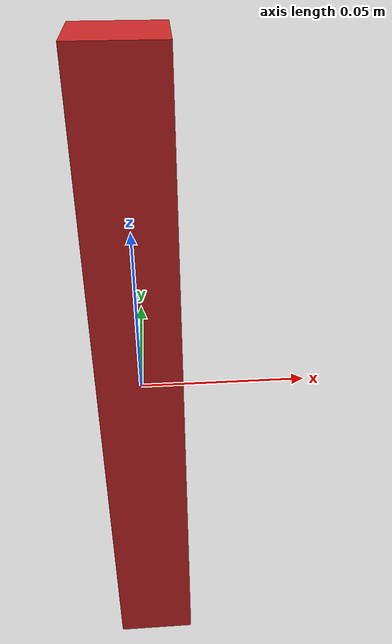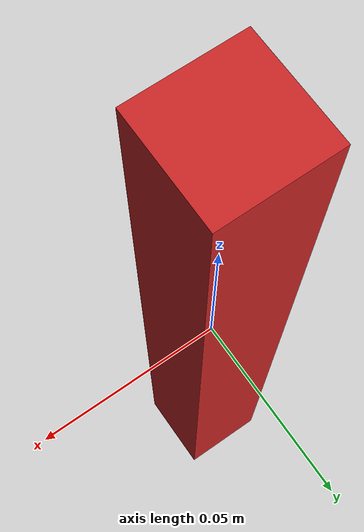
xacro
<?xml version="1.0"?>
<robot xmlns:xacro="http://www.ros.org/wiki/xacro" name="simple_box">
    <link name="object_base_link">
    </link>

    <joint name="object_base_joint" type="fixed">
        <parent link="object_base_link"/>
        <child link="object_link"/>
        <axis xyz="0 0 1" />
        <origin xyz="0 0 0" rpy="0 0 0"/>
    </joint>

    <link name="object_link">
        <inertial>
            <origin xyz="0 0 0" />
            <mass value="1.0" />
            <inertia ixx="1.0" ixy="0.0" ixz="0.0" iyy="1.0" iyz="0.0" izz="1.0" />
        </inertial>
        <visual>
            <origin xyz="0 0 0"/>
            <geometry>
                <box size="0.025 0.025 0.2" />
            </geometry>
        </visual>
        <collision>
            <origin xyz="0 0 0"/>
            <geometry>
                <box size="0.025 0.025 0.2" />
            </geometry>
        </collision>
    </link>

    <gazebo reference="object_base_link">
        <gravity>1</gravity>
    </gazebo>

    <gazebo reference="object_link">
        <mu1>1</mu1>
        <mu2>1</mu2>
        <material>Gazebo/Red</material>
    </gazebo>
</robot>
